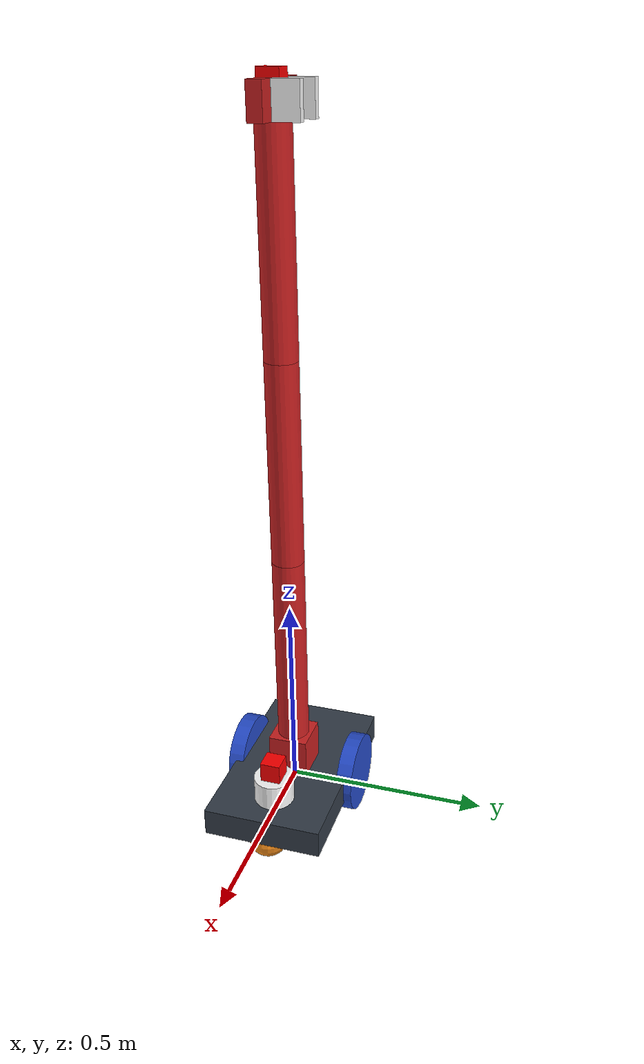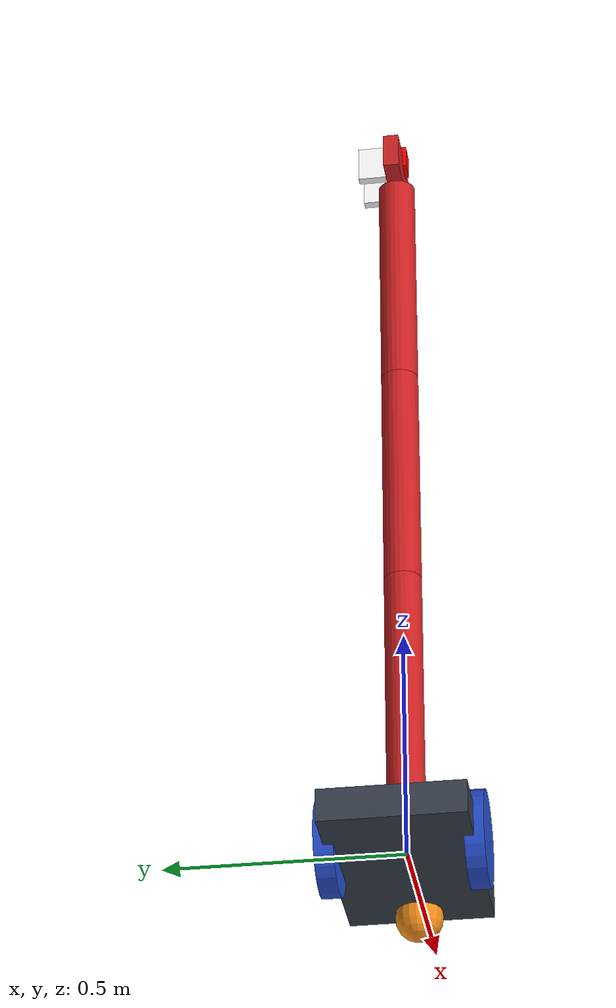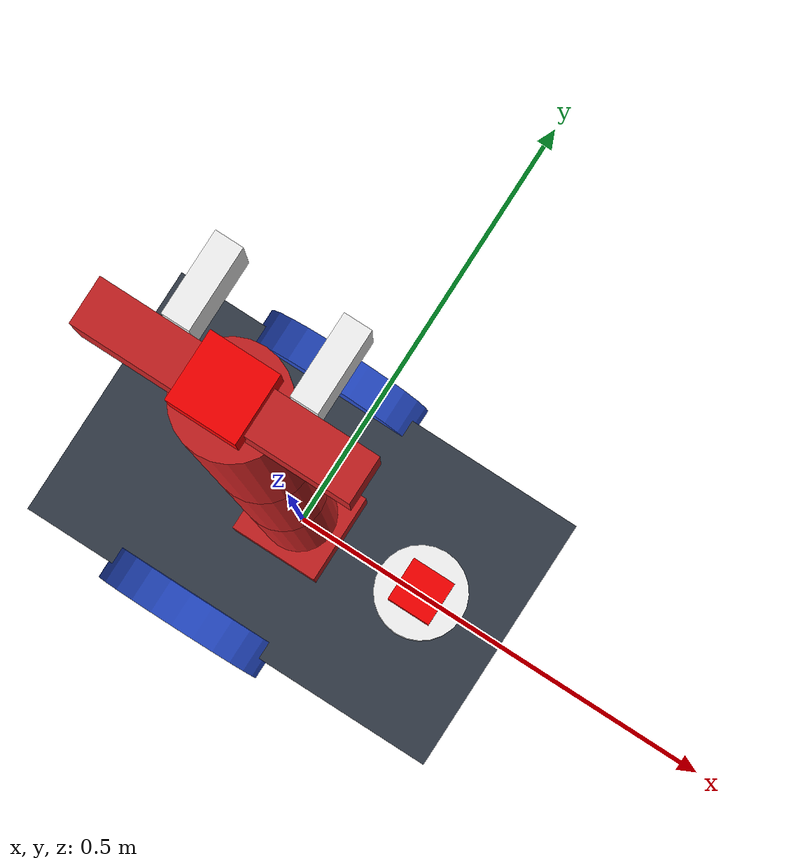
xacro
<?xml version="1.0" ?>
<robot name="cluedo_robot" xmlns:xacro="https://www.ros.org/wiki/xacro" >

 <xacro:include filename="$(find exprob_ass3)/urdf/materials.xacro" />
 <xacro:include filename="$(find exprob_ass3)/urdf/cluedo_robot.gazebo" />

 <xacro:macro name="cylinder_inertia" params="mass r l">
    <inertia ixx="${mass*(3*r*r+l*l)/12}" ixy = "0" ixz = "0"
                iyy="${mass*(3*r*r+l*l)/12}" iyz = "0" izz="${mass*(r*r)/2}" />
 </xacro:macro>

    <xacro:macro name="link_wheel" params="name">
        <link name="${name}">
            <inertial>
              <mass value="0.2"/>
              <origin rpy="0 1.5707 1.5707" xyz="0 0 0"/>
              <inertia ixx="0.000526666666667" ixy="0" ixz="0" iyy="0.000526666666667" iyz="0" izz="0.001"/>
            </inertial>
            <collision name="link_right_wheel_collision">
              <origin rpy="0 1.5707 1.5707" xyz="0 0 0"/>
              <geometry>
                <cylinder length="0.04" radius="0.1"/>
              </geometry>
            </collision>
            <visual name="${name}_visual">
              <origin rpy="0 1.5707 1.5707" xyz="0 0 0"/>
              <geometry>
                <cylinder length="0.04" radius="0.1"/>
              </geometry>
            </visual>
        </link>
    </xacro:macro>

    <xacro:macro name="joint_wheel" params="name child origin_xyz">
      <joint name="${name}" type="continuous">
        <origin rpy="0 0 0" xyz="${origin_xyz}"/>
        <child link="${child}"/>
        <parent link="base_link"/>
        <axis rpy="0 0 0" xyz="0 1 0"/>
        <limit effort="10000" velocity="1000"/>
        <joint_properties damping="1.0" friction="1.0"/>
      </joint>
    </xacro:macro>

  <link name="base_link">
    <!-- pose and inertial -->
    <pose>0 0 0.1 0 0 0</pose>

    <inertial>
      <mass value="7"/>
      <origin rpy="0 0 0" xyz="0 0 0.1"/>
      <inertia ixx="0.0395416666667" ixy="0" ixz="0" iyy="0.106208333333" iyz="0" izz="0.106208333333"/>
    </inertial>

    <collision name="collision_chassis">
      <geometry>
        <box size="0.5 0.3 0.07"/>
      </geometry>
    </collision>

    <visual>
      <origin rpy="0 0 0" xyz="0 0 0"/>
      <geometry>
        <box size="0.5 0.3 0.07"/>
      </geometry>
      <material name="blue"/>
    </visual>

    <!-- caster front -->
    <collision name="caster_front_collision">
      <origin rpy=" 0 0 0" xyz="0.35 0 -0.05"/>
      <geometry>
        <sphere radius="0.05"/>
      </geometry>
      <surface>
        <friction>
          <ode>
            <mu>0</mu>
            <mu2>0</mu2>
            <slip1>1.0</slip1>
            <slip2>1.0</slip2>
          </ode>
        </friction>
      </surface>
    </collision>
    <visual name="caster_front_visual">
      <origin rpy=" 0 0 0" xyz="0.2 0 -0.05"/>
      <geometry>
        <sphere radius="0.05"/>
      </geometry>
    </visual>
    </link>

  <!-- Create wheels -->

  <xacro:link_wheel name="link_right_wheel" />
  <xacro:link_wheel name="link_left_wheel" />
  <xacro:joint_wheel name="joint_right_wheel"  child="link_right_wheel"  origin_xyz="-0.05 0.15 0"  />
  <xacro:joint_wheel name="joint_left_wheel"   child="link_left_wheel"   origin_xyz="-0.05 -0.15 0"  />

   <link name="laser">
    <inertial>
      <origin xyz="0 0 0" rpy="0 0 0" />
      <mass value="1" />
      <xacro:cylinder_inertia mass="1" r="0.05" l="0.1" />
    </inertial>

    <visual>
      <origin xyz="0 0 0" rpy="0 0 0" />
      <geometry>
        <cylinder radius="0.05" length="0.1"/>
      </geometry>
      <material name="white" />
    </visual>

    <collision>
      <origin xyz="0 0 0" rpy="0 0 0"/>
      <geometry>
        <cylinder radius="0.05" length="0.1"/>
      </geometry>
    </collision>
  </link>

  <joint name="joint_laser" type="fixed">
    <origin xyz="0.15 0 0.05" rpy="0 0 0"/>
    <parent link="base_link"/>
    <child link="laser"/>
  </joint>

   <link name="camera_link1">
	    <collision>
	      <origin xyz="0 0 0.025" rpy="0 0 0"/>
	      <geometry>
		<box size="0.05 0.05 0.05"/>
	      </geometry>
	    </collision>
	    <visual>
	      <origin xyz="0 0 0.025" rpy="0 0 0"/>
	      <geometry>
		<box size="0.05 0.05 0.05"/>
	      </geometry>
	      <material name="black">
		<color rgba="1 0 0 1"/>
	      </material>
	    </visual>
	    <inertial>
	      <mass value="1e-5" />
	      <origin xyz="0 0 0" rpy="0 0 0"/>
	      <inertia ixx="1e-6" ixy="0" ixz="0" iyy="1e-6" iyz="0" izz="1e-6" />
	    </inertial>
  </link>

  <joint name="camera_joint1" type="fixed">
	    <axis xyz="0 1 0" />
	    <origin xyz="0 0 0.05" rpy="0 0 0"/>
	    <parent link="laser"/>
	    <child link="camera_link1"/>
	 </joint>

<!--arm definition -->

  <link name="arm_base_link">
  	<inertial>
  		<mass value="0.5"/>
  		<origin xyz="0 0 0" rpy="0 0 0" />
  		<inertia ixx="0.0000416666667" ixy="0" ixz="0" iyy="0.0000416666667" iyz="0" izz="0.0000416666667"/>
  	</inertial>
  	<collision>
  	  <origin xyz="0 0 0" rpy="0 0 0"/>
      <geometry>
        <box size="0.1 0.1 0.1"/>
      </geometry>
  	</collision>
  	<visual>
  	  <origin xyz="0 0 0" rpy="0 0 0"/>
      <geometry>
        <box size="0.1 0.1 0.1"/>
      </geometry>
      <material name="red" />
  	</visual>
  </link>

  <joint name="arm_base_to_base" type="fixed">
  	<origin rpy="0 0 0" xyz="0 0 0.085"/>
  	<parent link="base_link"/>
  	<child link="arm_base_link"/>
  </joint>

  <link name="arm_link_01">
  	<inertial>
  		<mass value="0.015"/>
  		<origin xyz="0 0 0" rpy="0 0 0" />
  		<inertia ixx="0.000010279" ixy="0" ixz="0" iyy="0.000010279" iyz="0" izz="0.000007225"/>
  	</inertial>
  	<collision>
  	  <origin xyz="0 0 0.25" rpy="0 0 0"/>
      <geometry>
        <cylinder radius="0.04" length="0.5"/>
      </geometry>
  	</collision>
  	<visual>
  	  <origin xyz="0 0 0.25" rpy="0 0 0"/>
      <geometry>
        <cylinder radius="0.04" length="0.5"/>
      </geometry>
      <material name="red" />
  	</visual>
  </link>

  <joint name="arm_joint_01" type="revolute">
  	<axis xyz="0 0 1"/>
  	<limit effort="1000.0" lower="-3.14" upper="3.14" velocity="0.2"/>
  	<origin rpy="0 0 0" xyz="0 0 0.05"/>
  	<parent link="arm_base_link"/>
  	<child link="arm_link_01"/>
  </joint>

    <link name="arm_link_02">
  	<inertial>
  		<mass value="0.015"/>
  		<origin xyz="0 0 0" rpy="0 0 0" />
  		<inertia ixx="0.000010279" ixy="0" ixz="0" iyy="0.000010279" iyz="0" izz="0.000007225"/>
  	</inertial>
  	<collision>
  	  <origin xyz="0 0 0.2" rpy="0 0 0"/>
      <geometry>
        <cylinder radius="0.04" length="0.5"/>
      </geometry>
  	</collision>
  	<visual>
  	  <origin xyz="0 0 0.25" rpy="0 0 0"/>
      <geometry>
        <cylinder radius="0.04" length="0.5"/>
      </geometry>
      <material name="red" />
  	</visual>
  </link>

  <joint name="arm_joint_02" type="revolute">
  	<axis xyz="1 0 0"/>
  	<limit effort="1000.0" lower="-2.8" upper="2.8" velocity="0.2"/>
  	<origin rpy="0 0 0" xyz="0 0 0.5"/>
  	<parent link="arm_link_01"/>
  	<child link="arm_link_02"/>
  </joint>

      <link name="arm_link_03">
  	<inertial>
  		<mass value="0.015"/>
  		<origin xyz="0 0 0" rpy="0 0 0" />
  		<inertia ixx="0.000010279" ixy="0" ixz="0" iyy="0.000010279" iyz="0" izz="0.000007225"/>
  	</inertial>
  	<collision>
  	  <origin xyz="0 0 0.2" rpy="0 0 0"/>
      <geometry>
        <cylinder radius="0.04" length="0.5"/>
      </geometry>
  	</collision>
  	<visual>
  	  <origin xyz="0 0 0.25" rpy="0 0 0"/>
      <geometry>
        <cylinder radius="0.04" length="0.5"/>
      </geometry>
      <material name="red" />
  	</visual>
  </link>

  <joint name="arm_joint_03" type="revolute">
  	<axis xyz="1 0 0"/>
  	<limit effort="1000.0" lower="-2.8" upper="2.8" velocity="0.2"/>
  	<origin rpy="0 0 0" xyz="0 0 0.5"/>
  	<parent link="arm_link_02"/>
  	<child link="arm_link_03"/>
  </joint>

    <link name="cluedo_link">
  	<inertial>
  		<mass value="0.005"/>
  		<origin xyz="0 0 0" rpy="0 0 0" />
  		<inertia ixx="0.000010279" ixy="0" ixz="0" iyy="0.000010279" iyz="0" izz="0.000007225"/>
  	</inertial>
  	<collision>
  	  <origin xyz="0 0 0" rpy="0 0 1.57"/>
      <geometry>
        <box size="0.034 0.2 0.08"/>
      </geometry>
  	</collision>
  	<visual>
  	  <origin xyz="0 0 0.04" rpy="0 0 1.57"/>
      <geometry>
        <box size="0.034 0.2 0.08"/>
      </geometry>
      <material name="red" />
  	</visual>
  </link>

  <joint name="arm_joint_04" type="revolute">
  	<axis xyz="1 0 0"/>
  	<limit effort="1000.0" lower="-1.8" upper="1.8" velocity="0.5"/>
  	<origin rpy="0 0 0" xyz="0 0 0.5"/>
  	<parent link="arm_link_03"/>
  	<child link="cluedo_link"/>
  </joint>

 <link name="camera_link2">
	    <collision>
	      <origin xyz="0 0 0.025" rpy="0 0 -1.57"/>
	      <geometry>
		<box size="0.05 0.05 0.05"/>
	      </geometry>
	    </collision>
	    <visual>
	      <origin xyz="0 0 0.025" rpy="0 0 -1.57"/>
	      <geometry>
		<box size="0.05 0.05 0.05"/>
	      </geometry>
	      <material name="black">
		<color rgba="1 0 0 1"/>
	      </material>
	    </visual>
	    <inertial>
	      <mass value="1e-5" />
	      <origin xyz="0 0 0" rpy="0 0 -1.57"/>
	      <inertia ixx="1e-6" ixy="0" ixz="0" iyy="1e-6" iyz="0" izz="1e-6" />
	    </inertial>
  </link>

  <joint name="camera_joint2" type="fixed">
	    <axis xyz="0 1 0" />
	    <origin xyz="0 0 0.05" rpy="0 0 1.57"/>
	    <parent link="cluedo_link"/>
	    <child link="camera_link2"/>
	 </joint>

<link name="right_grip_link">
  	<inertial>
  		<mass value="0.001"/>
  		<origin xyz="0 0 0" rpy="0 0 0" />
  		<inertia ixx="0.000010279" ixy="0" ixz="0" iyy="0.000010279" iyz="0" izz="0.000007225"/>
  	</inertial>
  	<collision>
  	  <origin xyz="-0.032 0.048 0.04" rpy="0 3.1415 -1.57"/>
      <geometry>
        <box size="0.06 0.02 0.08"/>
      </geometry>
  	</collision>
  	<visual>
  	  <origin xyz="-0.032 0.048 0.04" rpy="0 3.1415 -1.57"/>
      <geometry>
        <box size="0.06 0.02 0.08"/>
      </geometry>
      <material name="white" />
  	</visual>
  </link>

  <joint name="right_grip_joint" type="prismatic">
  	<axis xyz="1 0 0"/>
  	<limit effort="1000.0" lower="-0.04" upper="0.035" velocity="6.5"/>
  	<origin rpy="0 0 0" xyz="-0.015 0 0.0"/>
  	<parent link="cluedo_link"/>
  	<child link="right_grip_link"/>
  </joint>

  <link name="left_grip_link">
  	<inertial>
  		<mass value="0.001"/>
  		<origin xyz="0 0 0" rpy="0 0 0" />
  		<inertia ixx="0.000010279" ixy="0" ixz="0" iyy="0.000010279" iyz="0" izz="0.000007225"/>
  	</inertial>
  	<collision>
  	  <origin xyz="0.06 0.048 0.04" rpy="0 3.1415 -1.57"/>
      <geometry>
        <box size="0.06 0.02 0.08"/>
      </geometry>
  	</collision>
  	<visual>
  	  <origin xyz="0.06 0.048 0.04" rpy="0 3.1415 -1.57"/>
      <geometry>
        <box size="0.06 0.02 0.08"/>
      </geometry>
      <material name="white" />
  	</visual>
  </link>

  <joint name="left_grip_joint" type="prismatic">
  	<axis xyz="1 0 0"/>
  	<limit effort="1000.0" upper="0.04" lower="-0.035" velocity="6.5"/>
  	<origin rpy="0 0 0" xyz="-0.015 0 0.0"/>
  	<parent link="cluedo_link"/>
  	<child link="left_grip_link"/>
  </joint>

<transmission name="arm_joint_01_trans">
	<type>transmission_interface/SimpleTransmission</type>
	<joint name="arm_joint_01">
		<hardwareInterface>hardware_interface/EffortJointInterface</hardwareInterface>
	</joint>
	<actuator name="motor1">
		<hardwareInterface>hardware_interface/EffortJointInterface</hardwareInterface>
		<mechanicalInterface>1</mechanicalInterface>
	</actuator>
</transmission>

<transmission name="arm_joint_02_trans">
	<type>transmission_interface/SimpleTransmission</type>
	<joint name="arm_joint_02">
		<hardwareInterface>hardware_interface/EffortJointInterface</hardwareInterface>
	</joint>
	<actuator name="motor2">
		<hardwareInterface>hardware_interface/EffortJointInterface</hardwareInterface>
		<mechanicalInterface>1</mechanicalInterface>
	</actuator>
</transmission>

<transmission name="arm_joint_03_trans">
	<type>transmission_interface/SimpleTransmission</type>
	<joint name="arm_joint_03">
		<hardwareInterface>hardware_interface/EffortJointInterface</hardwareInterface>
	</joint>
	<actuator name="motor3">
		<hardwareInterface>hardware_interface/EffortJointInterface</hardwareInterface>
		<mechanicalInterface>1</mechanicalInterface>
	</actuator>
</transmission>

<transmission name="arm_joint_04_trans">
	<type>transmission_interface/SimpleTransmission</type>
	<joint name="arm_joint_04">
		<hardwareInterface>hardware_interface/EffortJointInterface</hardwareInterface>
	</joint>
	<actuator name="motor4">
		<hardwareInterface>hardware_interface/EffortJointInterface</hardwareInterface>
		<mechanicalInterface>1</mechanicalInterface>
	</actuator>
</transmission>

<transmission name="left_grip_trans">
	<type>transmission_interface/SimpleTransmission</type>
	<joint name="left_grip_joint">
		<hardwareInterface>hardware_interface/EffortJointInterface</hardwareInterface>
	</joint>
	<actuator name="motor5">
		<hardwareInterface>hardware_interface/EffortJointInterface</hardwareInterface>
		<mechanicalInterface>1</mechanicalInterface>
	</actuator>
</transmission>

<transmission name="right_grip_trans">
	<type>transmission_interface/SimpleTransmission</type>
	<joint name="right_grip_joint">
		<hardwareInterface>hardware_interface/EffortJointInterface</hardwareInterface>
	</joint>
	<actuator name="motor6">
		<hardwareInterface>hardware_interface/EffortJointInterface</hardwareInterface>
		<mechanicalInterface>1</mechanicalInterface>
	</actuator>
</transmission>

</robot>

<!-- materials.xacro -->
<robot name="cluedo_robot" xmlns:xacro="https://www.ros.org/wiki/xacro" >

  <material name="black">
    <color rgba="0.0 0.0 0.0 1.0"/>
  </material>
  <material name="blue">
    <color rgba="0.203125 0.23828125 0.28515625 1.0"/>
  </material>
  <material name="green">
    <color rgba="0.0 0.8 0.0 1.0"/>
  </material>
  <material name="grey">
    <color rgba="0.2 0.2 0.2 1.0"/>
  </material>
  <material name="orange">
    <color rgba="1.0 0.423529411765 0.0392156862745 1.0"/>
  </material>
  <material name="brown">
    <color rgba="0.870588235294 0.811764705882 0.764705882353 1.0"/>
  </material>
  <material name="red">
    <color rgba="0.80078125 0.12890625 0.1328125 1.0"/>
  </material>
  <material name="white">
    <color rgba="1.0 1.0 1.0 1.0"/>
  </material>

</robot>
